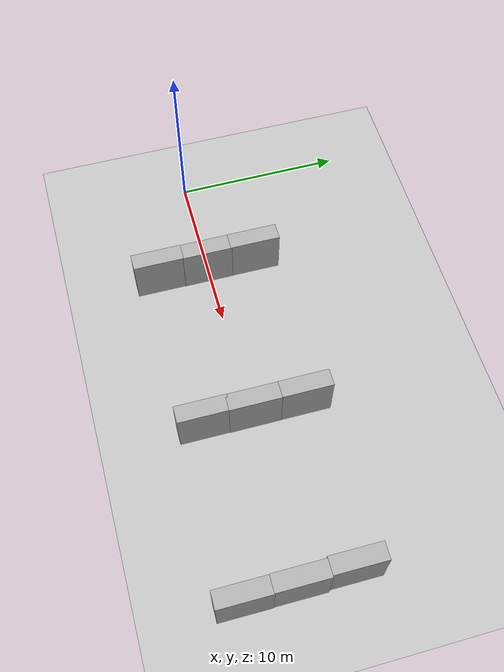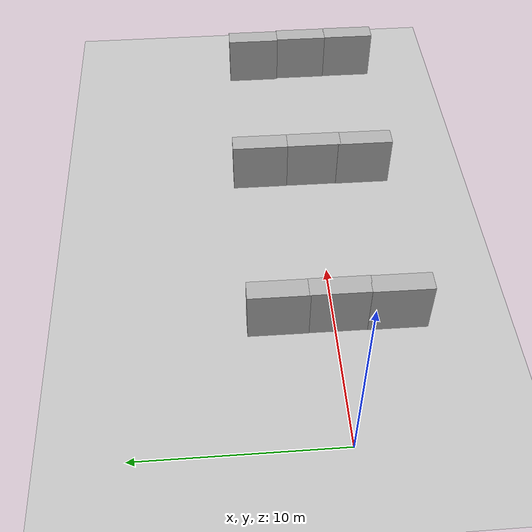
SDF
<sdf version="1.7">
 <world name="default">
  <light name="sun" type="directional">
   <pose>0 0 10 0 -0 0</pose>
   <diffuse>0.8 0.8 0.8 1</diffuse>
   <specular>0.2 0.2 0.2 1</specular>
   <attenuation>
    <range>1000</range>
    <constant>0.9</constant>
    <linear>0.01</linear>
    <quadratic>0.001</quadratic>
   </attenuation>
   <direction>-0.5 0.1 -0.9</direction>
   <spot><inner_angle>0</inner_angle><outer_angle>0</outer_angle><falloff>0</falloff></spot>
  </light>
  <model name="ground_plane">
   <static>1</static>
   <link name="link">
    <collision name="collision">
     <geometry><plane><normal>0 0 1</normal><size>100 100</size></plane></geometry>
     <surface><friction><ode><mu>100</mu><mu2>50</mu2></ode></friction></surface>
    </collision>
    <visual name="visual">
     <cast_shadows>0</cast_shadows>
     <geometry><plane><normal>0 0 1</normal><size>100 100</size></plane></geometry>
     <material>
      <script><uri>file://media/materials/scripts/gazebo.material</uri><name>Gazebo/Grey</name></script>
     </material>
    </visual>
   </link>
  </model>
  <gravity>0 0 -9.8</gravity>
  <magnetic_field>6e-06 2.3e-05 -4.2e-05</magnetic_field>
  <atmosphere type="adiabatic"/>
  <physics type="ode">
   <max_step_size>0.001</max_step_size>
   <real_time_factor>1</real_time_factor>
   <real_time_update_rate>1000</real_time_update_rate>
  </physics>
  <scene><ambient>0.4 0.4 0.4 1</ambient><background>0.7 0.7 0.7 1</background><shadows>1</shadows></scene>
  <spherical_coordinates>
   <surface_model>EARTH_WGS84</surface_model>
   <latitude_deg>0</latitude_deg>
   <longitude_deg>0</longitude_deg>
   <elevation>0</elevation>
   <heading_deg>0</heading_deg>
  </spherical_coordinates>
  <model name="brick_box_3x1x3">
   <static>1</static>
   <link name="chassis">
    <pose>0 0 1.5 0 -0 0</pose>
    <collision name="collision"><geometry><box><size>3 1 3</size></box></geometry></collision>
    <visual name="visual">
     <geometry><mesh><uri>model://brick_box_3x1x3/meshes/simple_box.dae</uri><scale>3 1 3</scale></mesh></geometry>
     <material>
      <script>
       <uri>model://brick_box_3x1x3/materials/scripts</uri>
       <uri>model://brick_box_3x1x3/materials/textures</uri>
       <name>BrickBox/Diffuse</name>
      </script>
     </material>
    </visual>
   </link>
   <pose>6.65042 -0.102024 0 0 0 -1.57606</pose>
  </model>
  <model name="brick_box_3x1x3_clone">
   <static>1</static>
   <link name="chassis">
    <pose>0 0 1.5 0 -0 0</pose>
    <collision name="collision"><geometry><box><size>3 1 3</size></box></geometry></collision>
    <visual name="visual">
     <geometry><mesh><uri>model://brick_box_3x1x3/meshes/simple_box.dae</uri><scale>3 1 3</scale></mesh></geometry>
     <material>
      <script>
       <uri>model://brick_box_3x1x3/materials/scripts</uri>
       <uri>model://brick_box_3x1x3/materials/textures</uri>
       <name>BrickBox/Diffuse</name>
      </script>
     </material>
    </visual>
   </link>
   <pose>6.65366 2.82855 0 0 0 -1.57606</pose>
  </model>
  <model name="brick_box_3x1x3_clone_0">
   <static>1</static>
   <link name="chassis">
    <pose>0 0 1.5 0 -0 0</pose>
    <collision name="collision"><geometry><box><size>3 1 3</size></box></geometry></collision>
    <visual name="visual">
     <geometry><mesh><uri>model://brick_box_3x1x3/meshes/simple_box.dae</uri><scale>3 1 3</scale></mesh></geometry>
     <material>
      <script>
       <uri>model://brick_box_3x1x3/materials/scripts</uri>
       <uri>model://brick_box_3x1x3/materials/textures</uri>
       <name>BrickBox/Diffuse</name>
      </script>
     </material>
    </visual>
   </link>
   <pose>6.61781 -3.0505 0 0 0 -1.57606</pose>
  </model>
  <model name="brick_box_3x1x3_clone_1">
   <static>1</static>
   <link name="chassis">
    <pose>0 0 1.5 0 -0 0</pose>
    <collision name="collision"><geometry><box><size>3 1 3</size></box></geometry></collision>
    <visual name="visual">
     <geometry><mesh><uri>model://brick_box_3x1x3/meshes/simple_box.dae</uri><scale>3 1 3</scale></mesh></geometry>
     <material>
      <script>
       <uri>model://brick_box_3x1x3/materials/scripts</uri>
       <uri>model://brick_box_3x1x3/materials/textures</uri>
       <name>BrickBox/Diffuse</name>
      </script>
     </material>
    </visual>
   </link>
   <pose>16.8469 0.048287 0 0 0 -1.57606</pose>
  </model>
  <model name="brick_box_3x1x3_clone_2">
   <static>1</static>
   <link name="chassis">
    <pose>0 0 1.5 0 -0 0</pose>
    <collision name="collision"><geometry><box><size>3 1 3</size></box></geometry></collision>
    <visual name="visual">
     <geometry><mesh><uri>model://brick_box_3x1x3/meshes/simple_box.dae</uri><scale>3 1 3</scale></mesh></geometry>
     <material>
      <script>
       <uri>model://brick_box_3x1x3/materials/scripts</uri>
       <uri>model://brick_box_3x1x3/materials/textures</uri>
       <name>BrickBox/Diffuse</name>
      </script>
     </material>
    </visual>
   </link>
   <pose>16.8523 2.98033 0 0 0 -1.57606</pose>
  </model>
  <model name="brick_box_3x1x3_clone_3">
   <static>1</static>
   <link name="chassis">
    <pose>0 0 1.5 0 -0 0</pose>
    <collision name="collision"><geometry><box><size>3 1 3</size></box></geometry></collision>
    <visual name="visual">
     <geometry><mesh><uri>model://brick_box_3x1x3/meshes/simple_box.dae</uri><scale>3 1 3</scale></mesh></geometry>
     <material>
      <script>
       <uri>model://brick_box_3x1x3/materials/scripts</uri>
       <uri>model://brick_box_3x1x3/materials/textures</uri>
       <name>BrickBox/Diffuse</name>
      </script>
     </material>
    </visual>
   </link>
   <pose>16.8154 -2.81761 0 0 0 -1.57606</pose>
  </model>
  <model name="brick_box_3x1x3_clone_4">
   <static>1</static>
   <link name="chassis">
    <pose>0 0 1.5 0 -0 0</pose>
    <collision name="collision"><geometry><box><size>3 1 3</size></box></geometry></collision>
    <visual name="visual">
     <geometry><mesh><uri>model://brick_box_3x1x3/meshes/simple_box.dae</uri><scale>3 1 3</scale></mesh></geometry>
     <material>
      <script>
       <uri>model://brick_box_3x1x3/materials/scripts</uri>
       <uri>model://brick_box_3x1x3/materials/textures</uri>
       <name>BrickBox/Diffuse</name>
      </script>
     </material>
    </visual>
   </link>
   <pose>26.7714 -0.276554 0 0 0 -1.57606</pose>
  </model>
  <model name="brick_box_3x1x3_clone_5">
   <static>1</static>
   <link name="chassis">
    <pose>0 0 1.5 0 -0 0</pose>
    <collision name="collision"><geometry><box><size>3 1 3</size></box></geometry></collision>
    <visual name="visual">
     <geometry><mesh><uri>model://brick_box_3x1x3/meshes/simple_box.dae</uri><scale>3 1 3</scale></mesh></geometry>
     <material>
      <script>
       <uri>model://brick_box_3x1x3/materials/scripts</uri>
       <uri>model://brick_box_3x1x3/materials/textures</uri>
       <name>BrickBox/Diffuse</name>
      </script>
     </material>
    </visual>
   </link>
   <pose>26.6942 2.72251 0 0 0 -1.57606</pose>
  </model>
  <model name="brick_box_3x1x3_clone_6">
   <static>1</static>
   <link name="chassis">
    <pose>0 0 1.5 0 -0 0</pose>
    <collision name="collision"><geometry><box><size>3 1 3</size></box></geometry></collision>
    <visual name="visual">
     <geometry><mesh><uri>model://brick_box_3x1x3/meshes/simple_box.dae</uri><scale>3 1 3</scale></mesh></geometry>
     <material>
      <script>
       <uri>model://brick_box_3x1x3/materials/scripts</uri>
       <uri>model://brick_box_3x1x3/materials/textures</uri>
       <name>BrickBox/Diffuse</name>
      </script>
     </material>
    </visual>
   </link>
   <pose>26.7843 -3.25071 0 0 0 -1.57606</pose>
  </model>
 </world>
</sdf>
